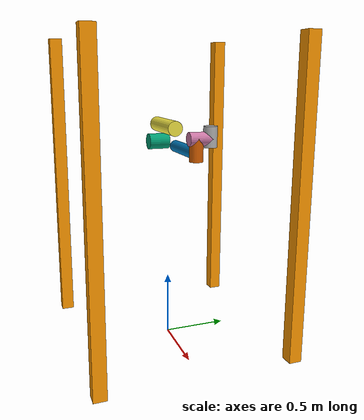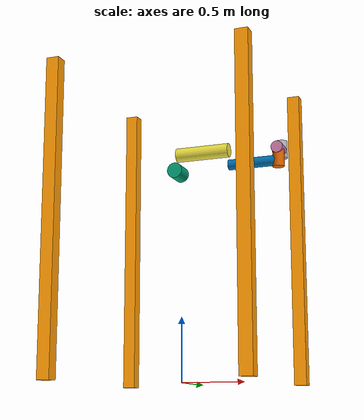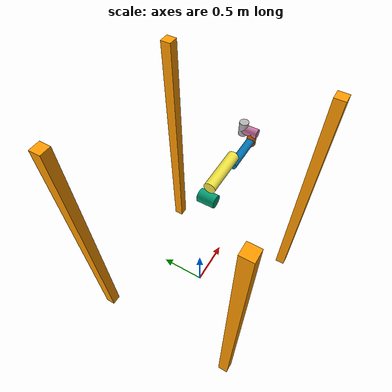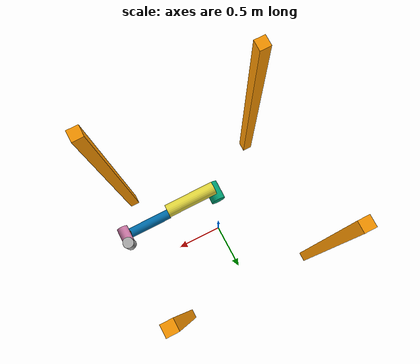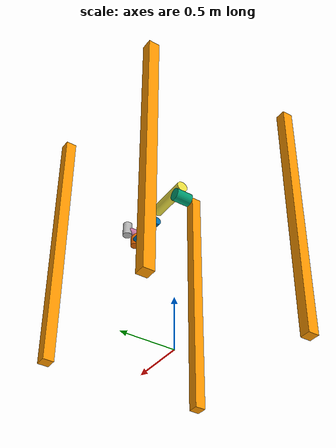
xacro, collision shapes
<?xml version="1.0"?>

<robot xmlns:sensor="http://playerstage.sourceforge.net/gazebo/xmlschema/#sensor"
       xmlns:controller="http://playerstage.sourceforge.net/gazebo/xmlschema/#controller"
       xmlns:interface="http://playerstage.sourceforge.net/gazebo/xmlschema/#interface"
       xmlns:xacro="http://ros.org/wiki/xacro">

<include filename="$(find ur5_description)/urdf/arm.transmission.xacro" />

  <property name="pi" value="3.14159265" />

<!-- Inertia parameters -->
  <property name="base_mass" value="4.0" /> <!-- Invented number, only matters for simulator -->
  <property name="shoulder_mass" value="3.7000" />
  <property name="upper_arm_mass" value="8.3930" />
  <property name="forearm_mass" value="2.2750" />
  <property name="wrist_1_mass" value="1.2190" />
  <property name="wrist_2_mass" value="1.2190" />
  <property name="wrist_3_mass" value="0.1879" />

  <property name="shoulder_cog" value="0.0 0.00193 -0.02561" />
  <property name="upper_arm_cog" value="0.0 -0.024201 0.2125" />
  <property name="forearm_cog" value="0.0 0.0265 0.11993" />       <!-- 0.119 is not half of 0.39225, is this really correct? -->
  <property name="wrist_1_cog" value="0.0 0.110949 0.01634" />
  <property name="wrist_2_cog" value="0.0 0.0018 0.11099" />
  <property name="wrist_3_cog" value="0.0 0.001159 0.0" />

<!-- Kinematic model -->
  <property name="shoulder_height" value="0.089159" />
  <property name="shoulder_offset" value="0.13585" />  <!-- shoulder_offset - elbow_offset + wrist_1_length = 0.10915 -->
  <property name="upper_arm_length" value="0.42500" />
  <property name="elbow_offset" value="0.1197" />       <!-- CAD measured -->
  <property name="forearm_length" value="0.39225" />
  <property name="wrist_1_length" value="0.093" />     <!-- CAD measured -->
  <property name="wrist_2_length" value="0.09465" />   <!-- In CAD this distance is 0.930, but in the spec it is 0.09465 -->
  <property name="wrist_3_length" value="0.0823" />

  <property name="shoulder_radius" value="0.060" />   <!-- manually measured -->
  <property name="upper_arm_radius" value="0.054" />  <!-- manually measured -->
  <property name="elbow_radius" value="0.060" />      <!-- manually measured -->
  <property name="forearm_radius" value="0.040" />    <!-- manually measured -->
  <property name="wrist_radius" value="0.045" />      <!-- manually measured -->

<!-- Collision model -->
  <property name="base_collision_length" value="0.160" />      <!-- manually measured -->
  <property name="shoulder_collision_length" value="0.200" />  <!-- manually measured -->
  <property name="shoulder_collision_offset" value="0.035" />  <!-- manually measured -->
  <property name="elbow_collision_length" value="0.200" />     <!-- manually measured -->
  <property name="elbow_collision_offset" value="0.035" />     <!-- manually measured -->

<!-- Gantry model -->
  <property name="gantry_height" value="2.43" />

  <link name="base_link" >
    <inertial>
      <mass value="15" />
      <inertia ixx="1.0" ixy="0.0" ixz="0.0" iyy="1.0" iyz="0.0" izz="1.0"/>
    </inertial>
  </link>

<xacro:macro name="gantry_leg" params="leg_name leg_x leg_y">

  <link name="gantry_leg_${leg_name}">
    <visual>
      <geometry>
          <box size="0.1 0.1 ${gantry_height}" />
      </geometry>
      <material name="orange">
        <color rgba="1 .6 0 1" />
      </material>
    </visual>
    <collision>
      <geometry>
          <box size="0.1 0.1 ${gantry_height}" />
      </geometry>
    </collision>
    <inertial>
      <mass value="100" />
      <inertia ixx="1.0" ixy="0.0" ixz="0.0" iyy="1.0" iyz="0.0" izz="1.0"/>
      <origin xyz="0.0 0.0 0.0" rpy="0.0 0.0 0.0" />
    </inertial>
  </link>

  <joint name="gantry_leg_${leg_name}_joint" type="fixed">
    <parent link = "gantry_frame_link" />
    <child link="gantry_leg_${leg_name}" />
    <origin xyz="${leg_x} ${leg_y} ${-gantry_height/2}" rpy="0.0 0.0 0.0" />
    <axis xyz="0.0 0.0 1.0" />
  </joint>

</xacro:macro>

<xacro:gantry_leg leg_name="1" leg_x="${1.5/2.0}" leg_y="${1.5/2.0}" />
<xacro:gantry_leg leg_name="2" leg_x="${-1.5/2.0}" leg_y="${1.5/2.0}" />
<xacro:gantry_leg leg_name="3" leg_x="${-1.5/2.0}" leg_y="${-1.5/2.0}" />
<xacro:gantry_leg leg_name="4" leg_x="${1.5/2.0}" leg_y="${-1.5/2.0}" />

  <joint name="gantry_frame_joint" type="fixed">
    <parent link = "base_link" />
    <child link="gantry_frame_link" />
    <origin xyz="0.0 0.0 ${gantry_height}" rpy="0.0 0.0 0.0" />
    <axis xyz="0.0 0.0 1.0" />
  </joint>

  <link name="gantry_frame_link" >
    <inertial>
      <mass value="15" />
      <inertia ixx="1.0" ixy="0.0" ixz="0.0" iyy="1.0" iyz="0.0" izz="1.0"/>
    </inertial>
  </link>

  <joint name="gantry_xbar_joint" type="prismatic">
    <parent link = "gantry_frame_link" />
    <child link="gantry_xbar_link" />
    <origin xyz="0.0 0.0 0.0" rpy="0.0 0.0 0.0" />
    <axis xyz="1.0 0.0 0.0" />
    <limit lower="-1.5" upper="1.5" effort="10.0" velocity="0.4"/>
  </joint>

  <link name="gantry_xbar_link" >
    <inertial>
      <mass value="15" />
      <inertia ixx="1.0" ixy="0.0" ixz="0.0" iyy="1.0" iyz="0.0" izz="1.0"/>
    </inertial>
  </link>

  <joint name="gantry_center_joint" type="prismatic">
    <parent link = "gantry_xbar_link" />
    <child link="gantry_center_link" />
    <origin xyz="0.0 0.0 0.0" rpy="0.0 0.0 0.0" />
    <axis xyz="0.0 1.0 0.0" />
    <limit lower="-1.5" upper="1.5" effort="10.0" velocity="0.4"/>
  </joint>

  <link name="gantry_center_link" >
    <inertial>
      <mass value="15" />
      <inertia ixx="1.0" ixy="0.0" ixz="0.0" iyy="1.0" iyz="0.0" izz="1.0"/>
    </inertial>
  </link>

  <joint name="gantry_mount_joint" type="fixed">
    <parent link = "gantry_center_link" />
    <child link="gantry_mount_link" />
    <origin xyz="0.0 0.0 -0.8" rpy="0.0 0.0 0.0" />
    <axis xyz="0.0 0.0 1.0" />
  </joint>

  <link name="gantry_mount_link" >
    <inertial>
      <mass value="1" />
      <inertia ixx="1.0" ixy="0.0" ixz="0.0" iyy="1.0" iyz="0.0" izz="1.0"/>
    </inertial>
  </link>

<xacro:macro name="ur5_robot" params="arm_name">

  <joint name="${arm_name}gantry_joint" type="fixed">
    <parent link = "gantry_mount_link" />
    <child link="${arm_name}base_link" />
    <origin xyz="0.0 0.0 0.0" rpy="${pi / 2.0} 0.0 0.0" />
    <axis xyz="0.0 0.0 1.0" />
  </joint>

  <link name="${arm_name}base_link" >
    <visual>
      <geometry>
        <mesh filename="package://ur5_description/meshes/Base.dae" />
      </geometry>
      <origin xyz="0.0 0.0 0.003" rpy="0.0 0.0 ${3.0 * pi / 4.0}" />
    </visual>
    <inertial>
      <mass value="${base_mass}" />
      <inertia ixx="1.0" ixy="0.0" ixz="0.0" iyy="1.0" iyz="0.0" izz="1.0"/>
    </inertial>
  </link>

  <joint name="${arm_name}shoulder_pan_joint" type="revolute">
    <parent link="${arm_name}base_link" />
    <child link = "${arm_name}shoulder_link" />
    <origin xyz="0.0 0.0 ${shoulder_height}" rpy="0.0 0.0 0.0" />
    <axis xyz="0.0 0.0 1.0" />
    <limit lower="${-2.0 * pi}" upper="${2.0 * pi}" effort="10.0" velocity="${pi}"/>
    <dynamics damping="10" friction="0.1"/>
  </joint>

  <link name="${arm_name}shoulder_link">
    <visual>
      <geometry>
        <mesh filename="package://ur5_description/meshes/Shoulder.dae" />
      </geometry>
    </visual>
    <collision>
      <geometry>
        <cylinder length="${base_collision_length}" radius="${shoulder_radius}"/>
      </geometry>
      <origin xyz="0.0 0.0 ${-shoulder_height + (base_collision_length/2.0)}" rpy="0.0 0.0 0.0" />
    </collision>
    <inertial>
      <mass value="${shoulder_mass}" />
      <inertia ixx="1.0" ixy="0.0" ixz="0.0" iyy="1.0" iyz="0.0" izz="1.0"/>
      <origin xyz="${shoulder_cog}" rpy="0.0 0.0 0.0" />
    </inertial>
  </link>

  <joint name="${arm_name}shoulder_lift_joint" type="revolute">
    <parent link="${arm_name}shoulder_link" />
    <child link = "${arm_name}upper_arm_link" />
    <origin xyz="0.0 ${shoulder_offset} 0.0" rpy="0.0 ${pi / 2.0} 0.0" />
    <axis xyz="0.0 1.0 0.0" />
    <limit lower="${-2.0 * pi}" upper="${2.0 * pi}" effort="10.0" velocity="${pi}"/>
    <dynamics damping="10" friction="0.1"/>
  </joint>

  <link name="${arm_name}upper_arm_link">
    <visual>
      <geometry>
        <mesh filename="package://ur5_description/meshes/UpperArm.dae" />
      </geometry>
      <origin xyz="0.0 0.0 0.0" rpy="0.0 0.0 0.0" />
    </visual>
    <collision>
      <geometry>
        <cylinder length="${upper_arm_length}" radius="${upper_arm_radius}"/>
      </geometry>
      <origin xyz="0.0 0.0 ${upper_arm_length/2.0}" rpy="0.0 0.0 0.0" />
    </collision>
    <inertial>
      <mass value="${upper_arm_mass}" />
      <inertia ixx="1.0" ixy="0.0" ixz="0.0" iyy="1.0" iyz="0.0" izz="1.0"/>
      <origin xyz="${upper_arm_cog}" rpy="0.0 0.0 0.0" />
    </inertial>
  </link>

  <joint name="${arm_name}elbow_joint" type="revolute">
    <parent link="${arm_name}upper_arm_link" />
    <child link = "${arm_name}forearm_link" />
    <origin xyz="0.0 ${-elbow_offset} ${upper_arm_length}" rpy="0.0 0.0 0.0" />
    <axis xyz="0.0 1.0 0.0" />
    <limit lower="${-2.0 * pi}" upper="${2.0 * pi}" effort="10.0" velocity="${pi}"/>
    <dynamics damping="10" friction="0.1"/>
  </joint>

  <link name="${arm_name}forearm_link">
    <visual>
      <geometry>
        <mesh filename="package://ur5_description/meshes/Forearm.dae" />
      </geometry>
    </visual>
    <collision>
      <geometry>
        <cylinder length="${forearm_length}" radius="${forearm_radius}"/>
      </geometry>
      <origin xyz="0.0 0.0 ${forearm_length/2.0}" rpy="0.0 0.0 0.0" />
    </collision>
    <inertial>
      <mass value="${forearm_mass}" />
      <origin xyz="${forearm_cog}" rpy="0.0 0.0 0.0" />
      <inertia ixx="1.0" ixy="0.0" ixz="0.0" iyy="1.0" iyz="0.0" izz="1.0"/>
    </inertial>
  </link>

  <joint name="${arm_name}wrist_1_joint" type="revolute">
    <parent link="${arm_name}forearm_link" />
    <child link = "${arm_name}wrist_1_link" />
    <origin xyz="0.0 0.0 ${forearm_length}" rpy="0.0 ${pi / 2.0} 0.0" />
    <axis xyz="0.0 1.0 0.0" />
    <limit lower="${-2.0 * pi}" upper="${2.0 * pi}" effort="10.0" velocity="${pi}"/>
    <dynamics damping="10" friction="0.1"/>
  </joint>

  <link name="${arm_name}wrist_1_link">
    <visual>
      <geometry>
        <mesh filename="package://ur5_description/meshes/Wrist1.dae" />
      </geometry>
      <origin xyz="0.0 ${wrist_1_length} 0.0" rpy="0.0 ${pi / 2.0} 0.0" />
    </visual>
    <collision>
      <geometry>
        <cylinder length="${1.6*wrist_1_length}" radius="${wrist_radius}"/>
      </geometry>
      <origin xyz="0.0 ${0.25*wrist_1_length} 0.0" rpy="${-pi/2.0} 0.0 0.0" />
    </collision>
    <inertial>
      <mass value="${wrist_1_mass}" />
      <origin xyz="${wrist_1_cog}" rpy="0.0 0.0 0.0" />
      <inertia ixx="1.0" ixy="0.0" ixz="0.0" iyy="1.0" iyz="0.0" izz="1.0"/>
    </inertial>
  </link>

  <joint name="${arm_name}wrist_2_joint" type="revolute">
    <parent link="${arm_name}wrist_1_link" />
    <child link = "${arm_name}wrist_2_link" />
    <origin xyz="0.0 ${wrist_1_length} 0.0" rpy="0.0 0.0 0.0" />
    <axis xyz="0.0 0.0 1.0" />
    <limit lower="${-2.0 * pi}" upper="${2.0 * pi}" effort="10.0" velocity="${pi}"/>
    <dynamics damping="10" friction="0.1"/>
  </joint>

  <link name="${arm_name}wrist_2_link">
    <visual>
      <geometry>
        <mesh filename="package://ur5_description/meshes/Wrist2.dae" />
      </geometry>
      <origin xyz="0.0 0.0 ${wrist_2_length}" rpy="0.0 0.0 0.0" />
    </visual>
    <collision>
      <geometry>
        <cylinder length="${1.6*wrist_2_length}" radius="${wrist_radius}"/>
      </geometry>
      <origin xyz="0.0 0.0 ${0.25*wrist_2_length}" rpy="0.0 0.0 0.0" />
    </collision>
    <inertial>
      <mass value="${wrist_2_mass}" />
      <origin xyz="${wrist_2_cog}" rpy="0.0 0.0 0.0" />
      <inertia ixx="1.0" ixy="0.0" ixz="0.0" iyy="1.0" iyz="0.0" izz="1.0"/>
    </inertial>
  </link>

  <joint name="${arm_name}wrist_3_joint" type="revolute">
    <parent link="${arm_name}wrist_2_link" />
    <child link = "${arm_name}wrist_3_link" />
    <origin xyz="0.0 0.0 ${wrist_2_length}" rpy="0.0 0.0 0.0" />
    <axis xyz="0.0 1.0 0.0" />
    <limit lower="${-2.0 * pi}" upper="${2.0 * pi}" effort="10.0" velocity="${pi}"/>
    <dynamics damping="10" friction="0.1"/>
  </joint>

  <link name="${arm_name}wrist_3_link">
    <visual>
      <geometry>
        <mesh filename="package://ur5_description/meshes/Wrist3.dae" />
      </geometry>
    </visual>
    <collision>
      <geometry>
        <cylinder length="${1.65*wrist_3_length}" radius="${wrist_radius}"/>
      </geometry>
      <origin xyz="0.0 ${0.15 * wrist_3_length} 0.0" rpy="${-pi/2.0} 0.0 0.0" />
    </collision>
    <inertial>
      <mass value="${wrist_3_mass}" />
      <origin xyz="${wrist_3_cog}" rpy="0.0 0.0 0.0" />
      <inertia ixx="1.0" ixy="0.0" ixz="0.0" iyy="1.0" iyz="0.0" izz="1.0"/>
    </inertial>
  </link>

  <joint name="${arm_name}ee_fixed_joint" type="fixed">
    <parent link="${arm_name}wrist_3_link" />
    <child link = "${arm_name}ee_link" />
    <origin xyz="0.0 ${wrist_3_length} 0.0" rpy="0.0 0.0 ${pi/2.0}" />
  </joint>

  <link name="${arm_name}ee_link" />

  <!-- Extra links for collision model -->

  <xacro:ur_arm_transmission name="${arm_name}" />

  <gazebo reference="universal_robot">
    <material>Gazebo/Blue</material>
  </gazebo>

</xacro:macro>
  <xacro:ur5_robot arm_name="r_" />
</robot>
